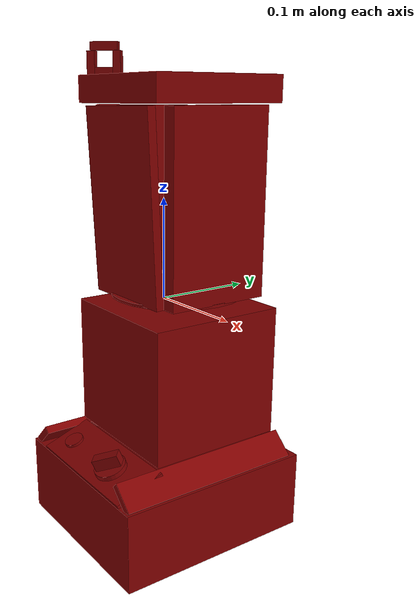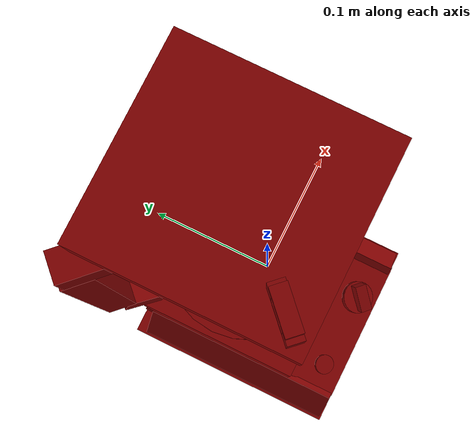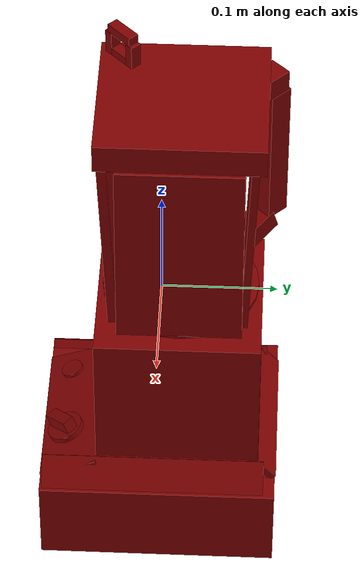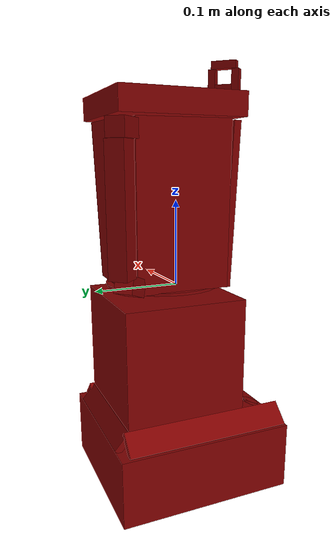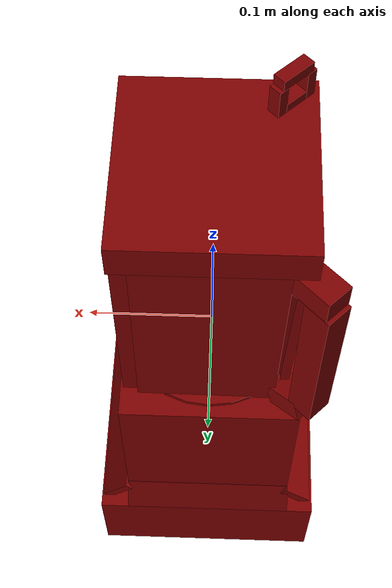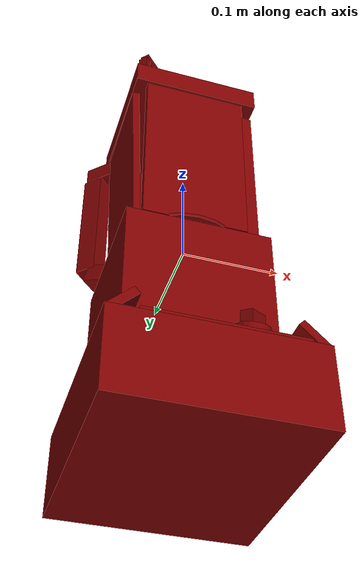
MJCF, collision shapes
<?xml version='1.0' encoding='UTF-8'?>
<mujoco model="model">
  <option timestep="0.002" gravity="0.0 0.0 -9.81"/>
  <compiler angle="radian"/>
  <asset>
    <mesh file="visuals/Blade001.obj" name="Blade001_vis"/>
    <mesh file="visuals/Body001.obj" name="Body001_vis"/>
    <mesh file="visuals/Button001.obj" name="Button001_vis"/>
    <mesh file="visuals/Jug001.obj" name="Jug001_vis"/>
    <mesh file="visuals/Jug001_Clear.obj" name="Jug001_Clear_vis"/>
    <mesh file="visuals/Knob001.obj" name="Knob001_vis"/>
    <mesh file="visuals/Lid001.obj" name="Lid001_vis"/>
    <texture file="visuals/T_BC001.png" name="Body001_material" type="2d"/>
    <material name="Body001_material" rgba="1 1 1 1.0" texture="Body001_material" shininess="0.1" specular="3"/>
    <texture file="visuals/T_BC001.png" name="Button001_material" type="2d"/>
    <material name="Button001_material" rgba="1 1 1 1.0" texture="Button001_material" shininess="0.1" specular="3"/>
    <texture file="visuals/T_BC001.png" name="Jug001_material" type="2d"/>
    <material name="Jug001_material" rgba="1 1 1 1.0" texture="Jug001_material" shininess="0.1" specular="3"/>
    <texture file="visuals/T_BC001.png" name="Blade001_material" type="2d"/>
    <material name="Blade001_material" rgba="1 1 1 1.0" texture="Blade001_material" shininess="0.1" specular="3"/>
    <texture file="visuals/T_BC001.png" name="Jug001_Clear_material" type="2d"/>
    <material name="Jug001_Clear_material" rgba="1 1 1 0.800000011920929" texture="Jug001_Clear_material" shininess="0.7700482308864594" specular="0.3103448502657381"/>
    <texture file="visuals/T_BC001.png" name="Lid001_material" type="2d"/>
    <material name="Lid001_material" rgba="1 1 1 1.0" texture="Lid001_material" shininess="0.1" specular="3"/>
    <texture file="visuals/T_BC001.png" name="Knob001_material" type="2d"/>
    <material name="Knob001_material" rgba="1 1 1 1.0" texture="Knob001_material" shininess="0.1" specular="3"/>
  </asset>
  <default>
    <default class="visual">
      <geom conaffinity="0" contype="0" group="1" type="mesh"/>
    </default>
    <default class="collision">
      <geom group="0" rgba="0.5 0 0 0.5"/>
    </default>
    <default class="spawn">
      <geom group="0" rgba="1 1 1 0.5" contype="0" conaffinity="0"/>
      <site group="0" rgba="1 1 1 0.5"/>
    </default>
    <default class="region">
      <geom group="1" conaffinity="0" contype="0" rgba="0 1 0 0"/>
    </default>
  </default>
  <worldbody>
    <body>
      <body name="object">
        <geom mesh="Body001_vis" type="mesh" solimp="0.998 0.998 0.001" solref="0.001 1" friction="0.95 0.3 0.1" class="visual" material="Body001_material"/>
        <geom class="collision" type="box" pos="0.000098 -0.000925 -0.205329" size="0.09544695913791656 0.10426949709653854 0.0402303971350193" quat="1.0 0.0 0.0 0.0" density="1000.0"/>
        <geom class="collision" type="box" pos="-0.000406 0.015929 -0.075664" size="0.07126396149396896 0.07182466983795166 0.067325659096241" quat="1.0 0.0 0.0 0.0" density="1000.0"/>
        <geom class="collision" type="box" pos="-0.079661 -0.004962 -0.155816" size="0.00402027927339077 0.09815406799316406 0.014873117208480835" quat="0.9202430248260498 -2.683670368653561e-16 0.39134737849235535 5.258097957039354e-08" density="1000.0"/>
        <geom class="collision" type="box" pos="0.080655 -0.004962 -0.155816" size="0.00402027927339077 0.09815406799316406 0.014873117208480835" quat="0.9202430248260498 -3.5377271248647306e-15 -0.39134737849235535 -5.258097957039354e-08" density="1000.0"/>
        <geom class="collision" type="box" pos="-0.000711 0.093151 -0.155728" size="0.00402027927339077 0.07176673412322998 0.01249531377106905" quat="0.6628537774085999 0.24622128903865814 -0.24622133374214172 0.6628536581993103" density="1000.0"/>
        <geom class="collision" type="box" pos="0.005127 -0.079639 -0.156842" size="0.003384337294846773 0.07289834320545197 0.026366258040070534" quat="0.5791575908660889 -0.405680388212204 -0.40568044781684875 -0.5791574120521545" density="1000.0"/>
        <body name="Button001">
          <joint axis="0.0 0.3528802990913391 -0.9356685280799866" pos="-0.043157 -0.084081 -0.152363" limited="true" name="Button001_joint" range="0.0 0.003" type="slide" damping="1" frictionloss="1" armature=".01" stiffness="0.05" springref="-1"/>
          <geom mesh="Button001_vis" type="mesh" solimp="0.998 0.998 0.001" solref="0.001 1" friction="0.95 0.3 0.1" class="visual" material="Button001_material"/>
          <geom class="collision" type="cylinder" pos="-0.043165 -0.084559 -0.151759" size="0.00983891449868679 0.0014325517695397139" quat="0.9826168417930603 0.18564508855342865 -4.122158629706957e-17 9.782021952868917e-24" density="1000.0"/>
        </body>
        <body name="Jug001">
          <joint axis="0.0 0.0 1.0" pos="-0.017658 0.034460 0.090210" limited="true" name="Jug001_joint" range="0.0 0.1" type="slide" damping="1" frictionloss="1" armature=".01" stiffness="0.05"/>
          <geom mesh="Jug001_vis" type="mesh" solimp="0.998 0.998 0.001" solref="0.001 1" friction="0.95 0.3 0.1" class="visual" material="Jug001_material"/>
          <geom class="collision" type="cylinder" pos="0.000344 0.016512 0.004835" size="0.06772742420434952 0.0015224376693367958" quat="1.0 0.0 0.0 0.0" density="1000.0"/>
          <body name="Blade001">
            <joint axis="0.0 0.0 1.0" pos="-0.000025 0.016316 0.017883" limited="false" name="Blade001_joint" range="0 360" type="hinge" damping="1" frictionloss="1" armature=".01" stiffness="0.05"/>
            <geom mesh="Blade001_vis" type="mesh" solimp="0.998 0.998 0.001" solref="0.001 1" friction="0.95 0.3 0.1" class="visual" material="Blade001_material"/>
            <geom class="collision" type="box" pos="-0.000005 0.016271 0.008616" size="0.006796702742576599 0.006033340003341436 0.008870548568665981" quat="1.0 0.0 0.0 0.0" density="1000.0"/>
            <geom class="collision" type="box" pos="-0.000005 0.041030 0.007864" size="0.006796702742576599 0.01402504462748766 0.001738610677421093" quat="0.9905418157577515 0.13721103966236115 -3.046706373741039e-17 -3.01057030171634e-25" density="1000.0"/>
            <geom class="collision" type="box" pos="-0.000060 0.024649 0.004454" size="0.006735978182405233 0.0023647986818104982 0.0017699705203995109" quat="1.0 0.0 0.0 0.0" density="1000.0"/>
            <geom class="collision" type="box" pos="-0.000011 0.055115 0.015802" size="0.005444969050586224 0.001163806882686913 0.002927056048065424" quat="1.0 0.0 0.0 0.0" density="1000.0"/>
            <geom class="collision" type="box" pos="-0.000011 -0.022623 0.015802" size="0.005444969050586224 0.0011247117072343826 0.0029121816623955965" quat="0.9999773502349854 -0.0067300149239599705 -1.4943602996053826e-18 1.4489573267817688e-24" density="1000.0"/>
            <geom class="collision" type="box" pos="-0.000060 0.007843 0.004454" size="0.006735978182405233 0.0023416096810251474 0.0017386107938364148" quat="0.9999773502349854 -0.0067300149239599705 -1.4943602996053826e-18 1.4489573267817688e-24" density="1000.0"/>
            <geom class="collision" type="box" pos="-0.000005 -0.008537 0.007864" size="0.006796702742576599 0.01402504462748766 0.001738610677421093" quat="0.9905418157577515 -0.13721103966236115 -3.046706373741039e-17 -9.279784980090003e-25" density="1000.0"/>
            <geom class="collision" type="box" pos="-0.017772 0.017022 0.019315" size="0.0015928685897961259 0.005283007398247719 0.012411748059093952" quat="0.9287297129631042 -5.471797459577488e-10 -0.370757520198822 -4.8397581053905014e-08" density="1000.0"/>
            <geom class="collision" type="box" pos="0.017499 0.015540 0.019315" size="0.001592868473380804 0.005283007398247719 0.012411747127771378" quat="0.9287297129631042 -5.47201395306729e-10 0.37075743079185486 4.83977515841616e-08" density="1000.0"/>
            <geom class="collision" type="box" pos="-0.000883 0.004426 0.023724" size="0.0009584952495060861 0.005283007398247719 0.012411748059093952" quat="0.703269898891449 0.07356300204992294 0.07356306165456772 -0.7032698392868042" density="1000.0"/>
            <geom class="collision" type="box" pos="0.000834 0.027965 0.023724" size="0.0009584952495060861 0.005283007398247719 0.012411748059093952" quat="0.703269898891449 -0.07356300950050354 0.07356306165456772 0.7032698392868042" density="1000.0"/>
          </body>
          <body name="Jug001_Clear">
            <geom class="region" name="reg_int" type="box" pos="-0.0001460000000000003 0.014603499999999998 0.0978415" size="0.053325 0.0530415 0.1078935"/>
            <geom mesh="Jug001_Clear_vis" type="mesh" solimp="0.998 0.998 0.001" solref="0.001 1" friction="0.95 0.3 0.1" class="visual" material="Jug001_Clear_material"/>
            <geom class="collision" type="box" pos="0.001624 0.076110 0.096213" size="0.05276477709412575 0.003327916609123349 0.09030888229608536" quat="0.9997764825820923 -0.02008601650595665 -0.005285521969199181 -0.003948627971112728" density="1000.0"/>
            <geom class="collision" type="box" pos="-0.001541 -0.044202 0.095544" size="0.05276710167527199 0.004131825175136328 0.09101178497076035" quat="0.9997565746307373 0.021339016035199165 -0.004932233598083258 0.002672158880159259" density="1000.0"/>
            <geom class="collision" type="box" pos="-0.059973 0.017349 0.096147" size="0.05306067690253258 0.00356504344381392 0.09038258343935013" quat="0.7040438652038574 0.009124255739152431 -0.01638084463775158 -0.7099089026451111" density="1000.0"/>
            <geom class="collision" type="box" pos="0.059667 0.017350 0.096209" size="0.007471128832548857 0.053433459252119064 0.09090543538331985" quat="1.0 0.0 0.0 0.0" density="1000.0"/>
            <geom class="collision" type="box" pos="-0.074549 0.090803 0.095960" size="0.010457104071974754 0.010834897868335247 0.06791377812623978" quat="0.9236152768135071 0.0 0.0 0.38332080841064453" density="1000.0"/>
            <geom class="collision" type="box" pos="-0.069714 0.085981 0.174087" size="0.010457104071974754 0.015109619125723839 0.009672882035374641" quat="0.9236152768135071 0.0 0.0 0.38332080841064453" density="1000.0"/>
            <geom class="collision" type="box" pos="-0.063005 0.079291 0.018030" size="0.010457104071974754 0.015109619125723839 0.009672882035374641" quat="0.9112091660499573 0.15087415277957916 0.06261612474918365 0.37817203998565674" density="1000.0"/>
          </body>
          <body name="Lid001">
            <joint axis="0.0 0.0 1.0" pos="-0.000416 0.017845 0.215488" limited="true" name="Lid001_joint" range="0.0 0.1" type="slide" damping="1" frictionloss="1" armature=".01" stiffness="0.05"/>
            <geom mesh="Lid001_vis" type="mesh" solimp="0.998 0.998 0.001" solref="0.001 1" friction="0.95 0.3 0.1" class="visual" material="Lid001_material"/>
            <geom class="collision" type="box" pos="-0.000760 0.017573 0.201307" size="0.0665302500128746 0.07075388729572296 0.012819948606193066" quat="1.0 0.0 0.0 0.0" density="1000.0"/>
            <geom class="collision" type="box" pos="-0.039367 -0.025487 0.224882" size="0.0037440641317516565 0.004916483070701361 0.010853731073439121" quat="0.9270315766334534 0.0 0.0 0.3749832808971405" density="1000.0"/>
            <geom class="collision" type="box" pos="-0.057563 -0.043087 0.224882" size="0.0037440641317516565 0.004916483070701361 0.010853731073439121" quat="0.9270315766334534 0.0 0.0 0.3749832808971405" density="1000.0"/>
            <geom class="collision" type="box" pos="-0.048407 -0.034231 0.217417" size="0.008867119438946247 0.004916483070701361 0.003388203214854002" quat="0.9270315766334534 0.0 0.0 0.3749832808971405" density="1000.0"/>
            <geom class="collision" type="box" pos="-0.048364 -0.034189 0.239908" size="0.01324789971113205 0.004916483070701361 0.003862414974719286" quat="0.9270315766334534 0.0 0.0 0.3749832808971405" density="1000.0"/>
          </body>
        </body>
        <body name="Knob001">
          <joint axis="0.0 0.3454406261444092 -0.9384405612945557" pos="0.032689 -0.087039 -0.144538" limited="true" name="Knob001_joint" range="0.0 4.71238898038469" type="hinge" damping="0.05" armature="0.001" springref="-0.01"/>
          <geom mesh="Knob001_vis" type="mesh" solimp="0.998 0.998 0.001" solref="0.001 1" friction="0.95 0.3 0.1" class="visual" material="Knob001_material"/>
          <geom class="collision" type="cylinder" pos="0.032652 -0.085322 -0.149337" size="0.01615726202726364 0.0025616271886974573" quat="0.9826064705848694 0.18524746596813202 0.004521556198596954 0.012144521810114384" density="1000.0"/>
          <geom class="collision" type="box" pos="0.033018 -0.088627 -0.141061" size="0.013275418430566788 0.005633893422782421 0.006007363088428974" quat="0.9084489941596985 0.14288212358951569 -0.1322166621685028 0.3698970377445221" density="1000.0"/>
        </body>
        <geom class="region" name="reg_main" type="box" pos="0.0 -0.0013344999999999954 0.0" size="0.095559 0.1030545 0.24511"/>
      </body>
    </body>
  </worldbody>
  <actuator>
    <motor name="Button001_joint_actuator" joint="Button001_joint" gear="0.5"/>
    <motor name="Jug001_joint_actuator" joint="Jug001_joint" gear="0.5"/>
    <motor name="Knob001_joint_actuator" joint="Knob001_joint" gear="0.5"/>
    <motor name="Blade001_joint_actuator" joint="Blade001_joint" gear="20"/>
    <motor name="Lid001_joint_actuator" joint="Lid001_joint" gear="0.5"/>
  </actuator>
</mujoco>
